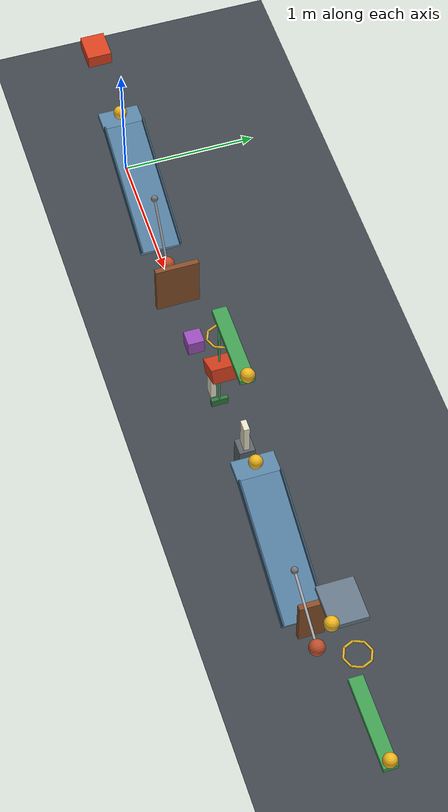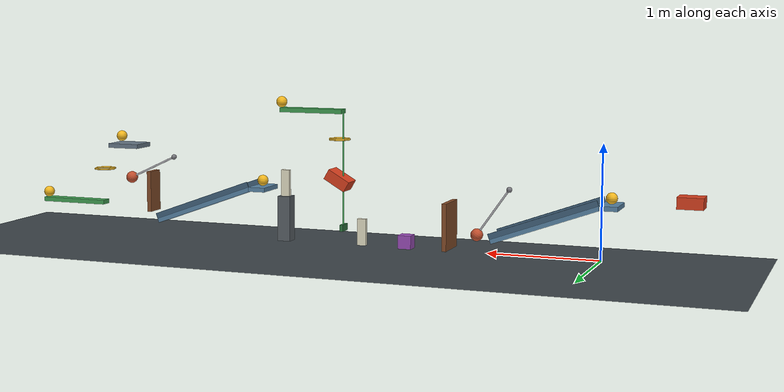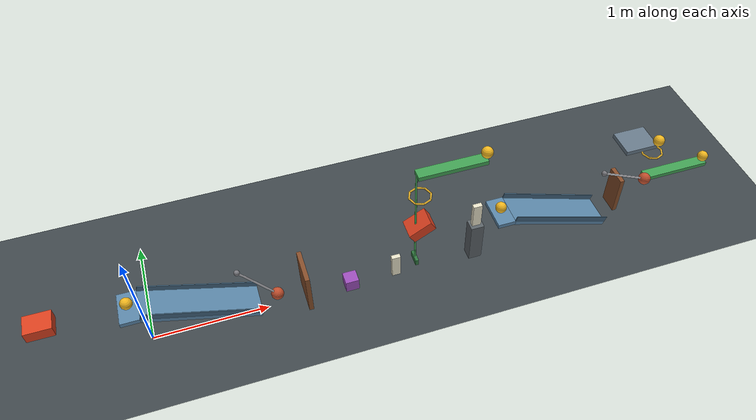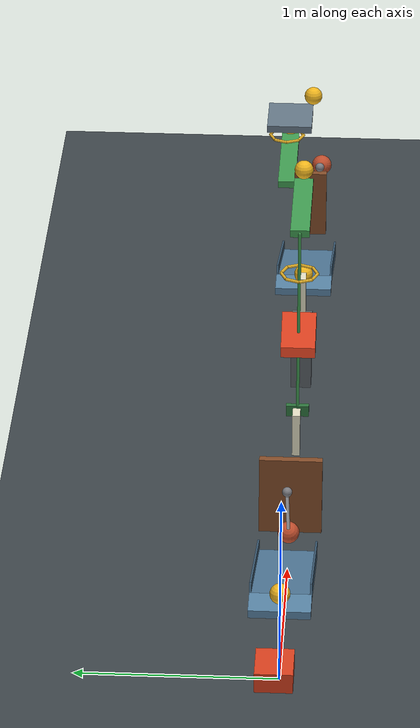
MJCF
<mujoco model="revised_passive_chain_candidate">
  <compiler angle="degree" autolimits="true"/>
  <option timestep="0.002" gravity="0 0 -9.81" integrator="implicitfast" cone="elliptic" iterations="100" o_solref="0.008 0.690107" o_solimp="0.95 0.95 0.001 0.5 2" o_friction="0.68 0.005 0.0001">
    <flag override="enable"/>
  </option>
  <size nconmax="400" njmax="2000"/>
  <visual>
    <headlight ambient="0.45 0.45 0.45" diffuse="0.7 0.7 0.7" specular="0.15 0.15 0.15"/>
    <map znear="0.01" zfar="50"/>
  </visual>

  <!-- All initial velocities are zero. No motors or prescribed motion are used. -->
  <!-- Contact damping approximates restitution 0.05, rather than imposing an exact restitution law. -->
  <!-- Pendulum masses include heavy pivot hubs, light rigid rods, and contact bobs. -->
  <!-- Pendulum1 and lever1 have additional passive assist springs. -->
  <!-- Joint lower limits retain loaded mechanisms at their initial poses. -->
  <!-- This candidate has not been simulation-validated. -->

  <worldbody>
    <light name="main_light" pos="2 -3 6" dir="0 0 -1"/>
    <camera name="overview" pos="3 -7 4" xyaxes="1 0 0 0 0.45 0.893"/>
    <geom name="floor" type="plane" size="10 5 0.1" friction="0.68 0.005 0.0001" rgba="0.24 0.27 0.29 1"/>

    <!-- Initial cart front to ball surface distance is 0.50 m. -->
    <body name="cart1" pos="-0.74 0 0.542020">
      <joint name="cart1_slide" type="slide" axis="1 0 0" range="0 0.65" damping="0.20" solreflimit="0.004 1"/>
      <geom name="cart1_box" type="box" size="0.11 0.09 0.05" mass="0.50" friction="0.68 0.005 0.0001" rgba="0.85 0.25 0.12 1"/>
    </body>

    <body name="ball1" pos="-0.08 0 0.542020">
      <freejoint name="ball1_free"/>
      <geom name="ball1_sphere" type="sphere" size="0.05" mass="0.20" friction="0.68 0.005 0.0001" rgba="0.95 0.72 0.12 1"/>
    </body>

    <!-- Ramp deck is 1.00 m long, 0.30 m wide, and inclined 20 degrees. -->
    <!-- Its upper surface ends at z=0.15 at the low end. -->
    <body name="ramp1" pos="0 0 0">
      <geom name="ramp1_deck" type="box" pos="0.463006 0 0.302216" euler="0 20 0" size="0.50 0.15 0.02" friction="0.68 0.005 0.0001" rgba="0.35 0.52 0.65 1"/>
      <geom name="ramp1_start_platform" type="box" pos="-0.08 0 0.472020" size="0.08 0.15 0.02" friction="0.68 0.005 0.0001" rgba="0.35 0.52 0.65 1"/>
      <geom name="ramp1_rail_left" type="box" pos="0.478397 -0.145 0.344502" euler="0 20 0" size="0.50 0.005 0.025" friction="0.68 0.005 0.0001" rgba="0.25 0.38 0.48 1"/>
      <geom name="ramp1_rail_right" type="box" pos="0.478397 0.145 0.344502" euler="0 20 0" size="0.50 0.005 0.025" friction="0.68 0.005 0.0001" rgba="0.25 0.38 0.48 1"/>
    </body>

    <!-- Initial bob center is approximately (1.094693,0,0.16). -->
    <!-- Its near surface is 0.10 m beyond the ramp edge. -->
    <!-- The initial inclination is 35 degrees; the permitted additional swing is 40 degrees. -->
    <!-- Initial assist torque remains below the opposing gravity torque. -->
    <body name="pendulum1" pos="0.807905 0 0.569576" euler="0 -35 0">
      <joint name="pendulum1_hinge" type="hinge" axis="0 -1 0" range="0 40" damping="0.04" stiffness="0.01" springref="800" solreflimit="0.004 1"/>
      <geom name="pendulum1_hub" type="sphere" size="0.025" mass="0.299" friction="0.68 0.005 0.0001" rgba="0.48 0.48 0.50 1"/>
      <geom name="pendulum1_rod" type="capsule" fromto="0 0 0 0 0 -0.50" size="0.009" mass="0.001" friction="0.68 0.005 0.0001" rgba="0.70 0.70 0.72 1"/>
      <geom name="pendulum1_bob" type="sphere" pos="0 0 -0.50" size="0.055" mass="0.050" friction="0.68 0.005 0.0001" rgba="0.76 0.31 0.18 1"/>
    </body>

    <!-- Upright bottom-hinged door falls toward the block when struck. -->
    <body name="door1" pos="1.345 0 0.02">
      <joint name="door1_hinge" type="hinge" axis="0 1 0" range="0 70" damping="0.04" solreflimit="0.004 1"/>
      <geom name="door1_panel" type="box" pos="0 0 0.21" size="0.02 0.16 0.21" mass="0.45" friction="0.68 0.005 0.0001" rgba="0.52 0.30 0.16 1"/>
    </body>

    <body name="block1" pos="1.745 0 0.060">
      <freejoint name="block1_free"/>
      <geom name="block1_cube" type="box" size="0.06 0.06 0.06" mass="0.35" friction="0.68 0.005 0.0001" rgba="0.60 0.30 0.72 1"/>
    </body>

    <!-- Block right face reaches domino left face after 0.32 m. -->
    <body name="domino1" pos="2.165 0 0.120">
      <freejoint name="domino1_free"/>
      <geom name="domino1_box" type="box" size="0.04 0.02 0.12" mass="0.25" friction="0.68 0.005 0.0001" rgba="0.90 0.88 0.78 1"/>
    </body>

    <!-- A low, rigid striker transmits the domino impact to the elevated beam. -->
    <!-- Striker center is 0.18 m beyond domino1's initial center. -->
    <!-- Beam mass is 0.50 kg; the striker is idealized as massless. -->
    <body name="lever1" pos="2.645 0 1.20">
      <inertial pos="0 0 0" mass="0.50" diaginertia="0.000483333 0.015066667 0.015416667"/>
      <joint name="lever1_hinge" type="hinge" axis="0 -1 0" range="0 45" damping="0.04" stiffness="0.08" springref="420" solreflimit="0.004 1"/>
      <geom name="lever1_beam" type="box" size="0.30 0.05 0.02" friction="0.68 0.005 0.0001" rgba="0.25 0.62 0.32 1"/>
      <geom name="lever1_striker_stem" type="capsule" fromto="-0.30 0 0 -0.30 0 -1.02" size="0.008" friction="0.68 0.005 0.0001" rgba="0.25 0.62 0.32 1"/>
      <geom name="lever1_striker_pad" type="box" pos="-0.30 0 -1.05" size="0.015 0.06 0.03" friction="0.68 0.005 0.0001" rgba="0.18 0.46 0.24 1"/>
    </body>

    <body name="ball2" pos="2.945 0 1.270">
      <freejoint name="ball2_free"/>
      <geom name="ball2_sphere" type="sphere" size="0.05" mass="0.20" friction="0.68 0.005 0.0001" rgba="0.95 0.72 0.12 1"/>
    </body>

    <!-- Octagonal capsule ring has a minimum clear diameter of 0.16 m. -->
    <!-- Ring plane is 0.32 m below ball2's initial center. -->
    <body name="ring1" pos="2.38 0 0.950">
      <geom name="ring1_segment01" type="capsule" fromto="0.095250 0 0 0.067352 0.067352 0" size="0.008" friction="0.68 0.005 0.0001" rgba="0.88 0.68 0.15 1"/>
      <geom name="ring1_segment02" type="capsule" fromto="0.067352 0.067352 0 0 0.095250 0" size="0.008" friction="0.68 0.005 0.0001" rgba="0.88 0.68 0.15 1"/>
      <geom name="ring1_segment03" type="capsule" fromto="0 0.095250 0 -0.067352 0.067352 0" size="0.008" friction="0.68 0.005 0.0001" rgba="0.88 0.68 0.15 1"/>
      <geom name="ring1_segment04" type="capsule" fromto="-0.067352 0.067352 0 -0.095250 0 0" size="0.008" friction="0.68 0.005 0.0001" rgba="0.88 0.68 0.15 1"/>
      <geom name="ring1_segment05" type="capsule" fromto="-0.095250 0 0 -0.067352 -0.067352 0" size="0.008" friction="0.68 0.005 0.0001" rgba="0.88 0.68 0.15 1"/>
      <geom name="ring1_segment06" type="capsule" fromto="-0.067352 -0.067352 0 0 -0.095250 0" size="0.008" friction="0.68 0.005 0.0001" rgba="0.88 0.68 0.15 1"/>
      <geom name="ring1_segment07" type="capsule" fromto="0 -0.095250 0 0.067352 -0.067352 0" size="0.008" friction="0.68 0.005 0.0001" rgba="0.88 0.68 0.15 1"/>
      <geom name="ring1_segment08" type="capsule" fromto="0.067352 -0.067352 0 0.095250 0 0" size="0.008" friction="0.68 0.005 0.0001" rgba="0.88 0.68 0.15 1"/>
    </body>

    <!-- Inclination converts a falling-ball impulse into horizontal cart motion. -->
    <!-- At the cart center x coordinate, ball-center contact height is z=0.70. -->
    <body name="cart2" pos="2.38 0 0.584530">
      <joint name="cart2_slide" type="slide" axis="1 0 0" range="0 0.58" damping="0.20" solreflimit="0.004 1"/>
      <geom name="cart2_box" type="box" euler="0 -30 0" size="0.11 0.09 0.05" mass="0.50" friction="0.68 0.005 0.0001" rgba="0.85 0.25 0.12 1"/>
    </body>

    <body name="domino2_base" pos="2.909217 0 0.205">
      <geom name="domino2_base_box" type="box" size="0.060 0.055 0.205" friction="0.68 0.005 0.0001" rgba="0.35 0.38 0.40 1"/>
    </body>

    <body name="domino2" pos="2.909217 0 0.530">
      <freejoint name="domino2_free"/>
      <geom name="domino2_box" type="box" size="0.04 0.02 0.12" mass="0.25" friction="0.68 0.005 0.0001" rgba="0.90 0.88 0.78 1"/>
    </body>

    <body name="ball3" pos="3.139217 0 0.542020">
      <freejoint name="ball3_free"/>
      <geom name="ball3_sphere" type="sphere" size="0.05" mass="0.20" friction="0.68 0.005 0.0001" rgba="0.95 0.72 0.12 1"/>
    </body>

    <body name="ramp2" pos="0 0 0">
      <geom name="ramp2_deck" type="box" pos="3.682223 0 0.302216" euler="0 20 0" size="0.50 0.15 0.02" friction="0.68 0.005 0.0001" rgba="0.35 0.52 0.65 1"/>
      <geom name="ramp2_start_platform" type="box" pos="3.139217 0 0.472020" size="0.08 0.15 0.02" friction="0.68 0.005 0.0001" rgba="0.35 0.52 0.65 1"/>
      <geom name="ramp2_rail_left" type="box" pos="3.697614 -0.145 0.344502" euler="0 20 0" size="0.50 0.005 0.025" friction="0.68 0.005 0.0001" rgba="0.25 0.38 0.48 1"/>
      <geom name="ramp2_rail_right" type="box" pos="3.697614 0.145 0.344502" euler="0 20 0" size="0.50 0.005 0.025" friction="0.68 0.005 0.0001" rgba="0.25 0.38 0.48 1"/>
    </body>

    <!-- Near face is 0.10 m beyond ramp2's low edge. -->
    <body name="flap1" pos="4.278910 0 0.58">
      <joint name="flap1_hinge" type="hinge" axis="0 -1 0" range="0 60" damping="0.04" solreflimit="0.004 1"/>
      <geom name="flap1_panel" type="box" pos="0 0 -0.19" size="0.02 0.09 0.19" mass="0.28" friction="0.68 0.005 0.0001" rgba="0.52 0.30 0.16 1"/>
    </body>

    <!-- Initial bob is outside the shelf's y edge, so its swing clears the shelf. -->
    <!-- Initial inclination is 65 degrees; additional travel is limited to 38 degrees. -->
    <body name="pendulum2" pos="4.085800 -0.055 0.711309" euler="0 -65 0">
      <joint name="pendulum2_hinge" type="hinge" axis="0 -1 0" range="0 38" damping="0.04" solreflimit="0.004 1"/>
      <geom name="pendulum2_hub" type="sphere" size="0.025" mass="0.299" friction="0.68 0.005 0.0001" rgba="0.48 0.48 0.50 1"/>
      <geom name="pendulum2_rod" type="capsule" fromto="0 0 0 0 0 -0.50" size="0.009" mass="0.001" friction="0.68 0.005 0.0001" rgba="0.70 0.70 0.72 1"/>
      <geom name="pendulum2_bob" type="sphere" pos="0 0 -0.50" size="0.055" mass="0.050" friction="0.68 0.005 0.0001" rgba="0.76 0.31 0.18 1"/>
    </body>

    <!-- Full rectangular shelf: 0.30 by 0.25 by 0.04 m, top at z=0.85. -->
    <!-- Ball4 begins at its outer corner, leaving the approaching bob unobstructed. -->
    <body name="shelf1" pos="4.458954 0.125 0.83">
      <geom name="shelf1_panel" type="box" size="0.15 0.125 0.02" friction="0.68 0.005 0.0001" rgba="0.40 0.47 0.53 1"/>
    </body>

    <body name="ball4" pos="4.608954 0 0.900">
      <freejoint name="ball4_free"/>
      <geom name="ball4_sphere" type="sphere" size="0.05" mass="0.20" friction="0.68 0.005 0.0001" rgba="0.95 0.72 0.12 1"/>
    </body>

    <!-- Ring plane is 0.30 m below ball4's initial center. -->
    <body name="ring2" pos="4.708954 0.15 0.600">
      <geom name="ring2_segment01" type="capsule" fromto="0.095250 0 0 0.067352 0.067352 0" size="0.008" friction="0.68 0.005 0.0001" rgba="0.88 0.68 0.15 1"/>
      <geom name="ring2_segment02" type="capsule" fromto="0.067352 0.067352 0 0 0.095250 0" size="0.008" friction="0.68 0.005 0.0001" rgba="0.88 0.68 0.15 1"/>
      <geom name="ring2_segment03" type="capsule" fromto="0 0.095250 0 -0.067352 0.067352 0" size="0.008" friction="0.68 0.005 0.0001" rgba="0.88 0.68 0.15 1"/>
      <geom name="ring2_segment04" type="capsule" fromto="-0.067352 0.067352 0 -0.095250 0 0" size="0.008" friction="0.68 0.005 0.0001" rgba="0.88 0.68 0.15 1"/>
      <geom name="ring2_segment05" type="capsule" fromto="-0.095250 0 0 -0.067352 -0.067352 0" size="0.008" friction="0.68 0.005 0.0001" rgba="0.88 0.68 0.15 1"/>
      <geom name="ring2_segment06" type="capsule" fromto="-0.067352 -0.067352 0 0 -0.095250 0" size="0.008" friction="0.68 0.005 0.0001" rgba="0.88 0.68 0.15 1"/>
      <geom name="ring2_segment07" type="capsule" fromto="0 -0.095250 0 0.067352 -0.067352 0" size="0.008" friction="0.68 0.005 0.0001" rgba="0.88 0.68 0.15 1"/>
      <geom name="ring2_segment08" type="capsule" fromto="0.067352 -0.067352 0 0.095250 0 0" size="0.008" friction="0.68 0.005 0.0001" rgba="0.88 0.68 0.15 1"/>
    </body>

    <!-- Ball-center contact height is z=0.35, 0.25 m below ring2. -->
    <body name="seesaw1" pos="5.033954 0.15 0.28">
      <joint name="seesaw1_hinge" type="hinge" axis="0 -1 0" range="0 42" damping="0.04" solreflimit="0.004 1"/>
      <geom name="seesaw1_beam" type="box" size="0.325 0.05 0.02" mass="0.55" friction="0.68 0.005 0.0001" rgba="0.25 0.62 0.32 1"/>
    </body>

    <body name="ball5" pos="5.333954 0.15 0.350">
      <freejoint name="ball5_free"/>
      <geom name="ball5_sphere" type="sphere" size="0.05" mass="0.20" friction="0.68 0.005 0.0001" rgba="0.95 0.72 0.12 1"/>
    </body>
  </worldbody>

  <!-- Compression-only spring: compressed by 0.20 m initially and slack thereafter. -->
  <tendon>
    <fixed name="cart1_axial_spring" stiffness="18" damping="0" springlength="0.20 10">
      <joint joint="cart1_slide" coef="1"/>
    </fixed>
  </tendon>

  <keyframe>
    <key name="start"/>
  </keyframe>
</mujoco>
